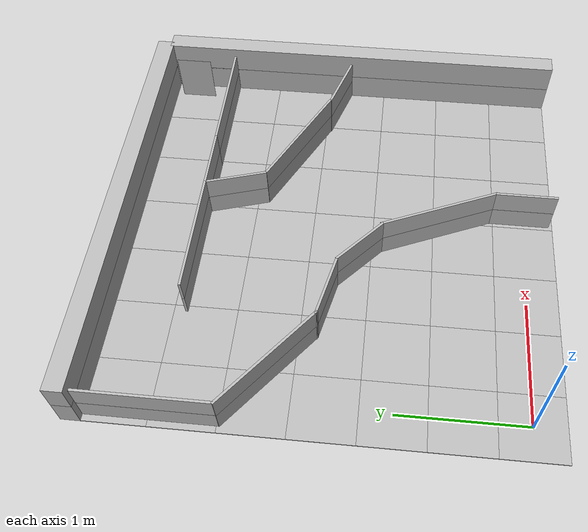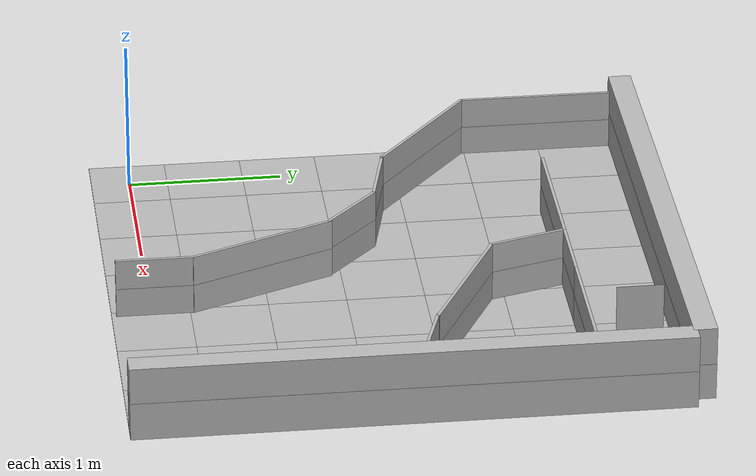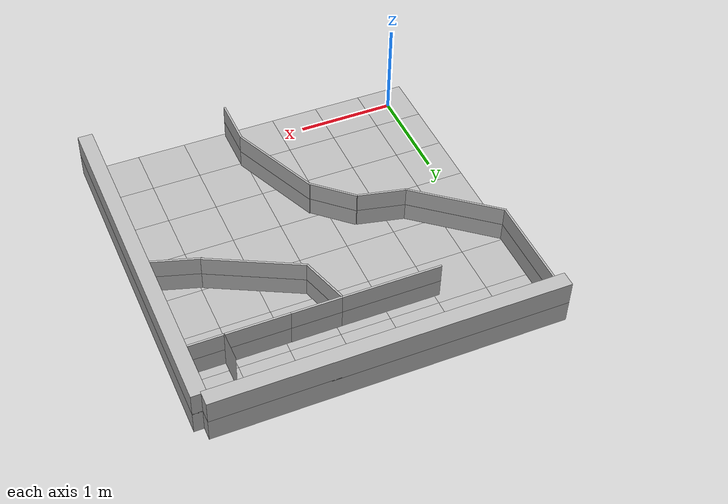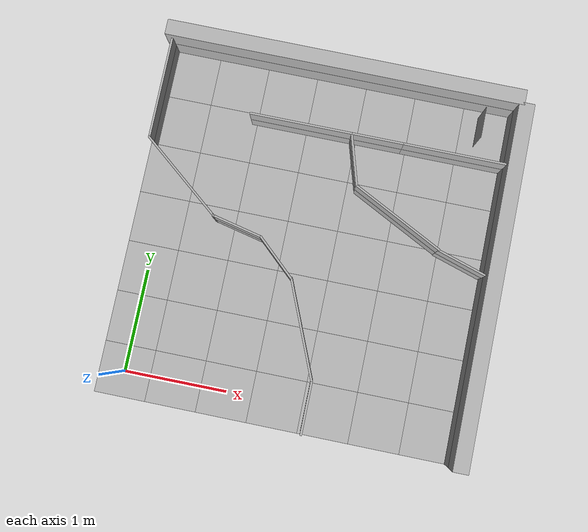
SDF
<sdf version="1.5">
 <world name="default">
  <physics name="default_physics" default="0" type="ode">
   <max_step_size>0.001</max_step_size>
   <real_time_factor>1</real_time_factor>
   <real_time_update_rate>1000</real_time_update_rate>
  </physics>
  <scene>
   <ambient>0.4 0.4 0.4 1</ambient>
   <background>0.7 0.7 0.7 1</background>
   <shadows>0</shadows>
   <grid>0</grid>
  </scene>
  <light name="sun" type="directional">
   <cast_shadows>0</cast_shadows>
   <pose>0 -100 10 0 -0 0</pose>
   <diffuse>0.8 0.8 0.8 1</diffuse>
   <specular>0.1 0.1 0.1 1</specular>
   <attenuation>
    <range>1000</range>
    <constant>0.9</constant>
    <linear>0.01</linear>
    <quadratic>0.001</quadratic>
   </attenuation>
   <direction>-0.5 0.5 -1</direction>
  </light>
  <include><name>arena</name><uri>model://dia_cr3_arena</uri></include>
  <include><name>rail-N1</name><uri>model://dia_rail</uri><pose>1.5 3.3 0.12 0 0 0</pose></include>
  <include><name>rail-N2</name><uri>model://dia_rail</uri><pose>1.5 3.3 0.36 0 0 0</pose></include>
  <include><name>rail-E1</name><uri>model://dia_rail</uri><pose>3.27 1.5 0.12 0 0 1.57</pose></include>
  <include><name>rail-E2</name><uri>model://dia_rail</uri><pose>3.27 1.5 0.36 0 0 1.57</pose></include>
  <include><name>panel-1a</name><uri>model://dia_panel</uri><pose>2.7 2.65 0.1 1.57 0 0</pose></include>
  <include><name>panel-1b</name><uri>model://dia_panel</uri><pose>2.7 2.65 0.3 1.57 0 0</pose></include>
  <include><name>panel-2a</name><uri>model://dia_panel_short</uri><pose>1.95 2.65 0.1 1.57 0 0</pose></include>
  <include><name>panel-2b</name><uri>model://dia_panel_short</uri><pose>1.95 2.65 0.3 1.57 0 0</pose></include>
  <include><name>panel-3a</name><uri>model://dia_panel</uri><pose>1.20 2.65 0.1 1.57 0 0</pose></include>
  <include><name>panel-3b</name><uri>model://dia_panel</uri><pose>1.20 2.65 0.3 1.57 0 0</pose></include>
  <include>
   <name>panel-4a</name>
   <uri>model://dia_panel_short</uri>
   <pose>1.77 2.4 0.1 1.57 0 -1.28</pose>
  </include>
  <include>
   <name>panel-4b</name>
   <uri>model://dia_panel_short</uri>
   <pose>1.77 2.4 0.3 1.57 0 -1.28</pose>
  </include>
  <include><name>panel-5a</name><uri>model://dia_panel</uri><pose>2.28 1.94 0.1 1.57 0 -0.47</pose></include>
  <include><name>panel-5b</name><uri>model://dia_panel</uri><pose>2.28 1.94 0.3 1.57 0 -0.47</pose></include>
  <include>
   <name>panel-6a</name>
   <uri>model://dia_panel_short</uri>
   <pose>2.95 1.64 0.1 1.57 0 -0.3</pose>
  </include>
  <include>
   <name>panel-6b</name>
   <uri>model://dia_panel_short</uri>
   <pose>2.95 1.64 0.3 1.57 0 -0.3</pose>
  </include>
  <include><name>panel-7a</name><uri>model://dia_panel</uri><pose>-0.19 2.73 0.1 1.57 0 1.57</pose></include>
  <include><name>panel-7b</name><uri>model://dia_panel</uri><pose>-0.19 2.73 0.3 1.57 0 1.57</pose></include>
  <include><name>panel-8a</name><uri>model://dia_panel</uri><pose>0.19 1.92 0.1 1.57 0 2.46</pose></include>
  <include><name>panel-8b</name><uri>model://dia_panel</uri><pose>0.19 1.92 0.3 1.57 0 2.46</pose></include>
  <include>
   <name>panel-9a</name>
   <uri>model://dia_panel_short</uri>
   <pose>0.8 1.56 0.1 1.57 0 2.92</pose>
  </include>
  <include>
   <name>panel-9b</name>
   <uri>model://dia_panel_short</uri>
   <pose>0.8 1.56 0.3 1.57 0 2.92</pose>
  </include>
  <include>
   <name>panel-10a</name>
   <uri>model://dia_panel_short</uri>
   <pose>1.23 1.34 0.1 1.57 0 2.4</pose>
  </include>
  <include>
   <name>panel-10b</name>
   <uri>model://dia_panel_short</uri>
   <pose>1.23 1.34 0.3 1.57 0 2.4</pose>
  </include>
  <include><name>panel-11a</name><uri>model://dia_panel</uri><pose>1.6 0.73 0.1 1.57 0 1.97</pose></include>
  <include><name>panel-11b</name><uri>model://dia_panel</uri><pose>1.6 0.73 0.3 1.57 0 1.97</pose></include>
  <include>
   <name>panel-12a</name>
   <uri>model://dia_panel_short</uri>
   <pose>1.79 0.03 0.1 1.57 0 1.57</pose>
  </include>
  <include>
   <name>panel-12b</name>
   <uri>model://dia_panel_short</uri>
   <pose>1.79 0.03 0.3 1.57 0 1.57</pose>
  </include>
  <include>
   <name>AprilTag</name>
   <uri>model://april_tag16_05_5</uri>
   <pose>2.88 2.95 0.4 -1.57 0 -1.57</pose>
  </include>
  <gravity>0 0 -9.8</gravity>
  <magnetic_field>6e-06 2.3e-05 -4.2e-05</magnetic_field>
  <atmosphere type="adiabatic"/>
  <spherical_coordinates>
   <surface_model>EARTH_WGS84</surface_model>
   <latitude_deg>0</latitude_deg>
   <longitude_deg>0</longitude_deg>
   <elevation>0</elevation>
   <heading_deg>0</heading_deg>
  </spherical_coordinates>
 </world>
</sdf>

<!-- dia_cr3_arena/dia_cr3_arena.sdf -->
<sdf version="1.5">
  <model name="dia_cr3_arena">
    <static>true</static>
    <link name="link">
      <collision name="surface_collision">
        <pose>1.525 1.525 0 0 0 0 0</pose>
        <geometry>
          <box>
            <size>3.55 3.55 0.01</size>
          </box>
        </geometry>
        <surface>
          <friction>
            <ode>
              <mu>0.3</mu>
              <mu2>0.3</mu2>
            </ode>
          </friction>
        </surface>
      </collision>

      <visual name="tile-1">
        <pose>0 0 0 0 0 0 0</pose>
        <geometry>
          <box>
            <size>0.5 0.5 0.01</size>
          </box>
        </geometry>
        <material>
          <script>
            <uri>model://dia_cr3_arena/materials/scripts</uri>
            <uri>model://dia_cr3_arena/materials/textures</uri>
            <name>arena_tile/Diffuse</name>
          </script>
        </material>
      </visual>

      <visual name="tile-2">
        <pose>0.5 0 0 0 0 0 0</pose>
        <geometry>
          <box>
            <size>0.5 0.5 0.01</size>
          </box>
        </geometry>
        <material>
          <script>
            <uri>model://dia_cr3_arena/materials/scripts</uri>
            <uri>model://dia_cr3_arena/materials/textures</uri>
            <name>arena_tile/Diffuse</name>
          </script>
        </material>
      </visual>

      <visual name="tile-3">
        <pose>1 0 0 0 0 0 0</pose>
        <geometry>
          <box>
            <size>0.5 0.5 0.01</size>
          </box>
        </geometry>
        <material>
          <script>
            <uri>model://dia_cr3_arena/materials/scripts</uri>
            <uri>model://dia_cr3_arena/materials/textures</uri>
            <name>arena_tile/Diffuse</name>
          </script>
        </material>
      </visual>

      <visual name="tile-4">
        <pose>1.5 0 0 0 0 0 0</pose>
        <geometry>
          <box>
            <size>0.5 0.5 0.01</size>
          </box>
        </geometry>
        <material>
          <script>
            <uri>model://dia_cr3_arena/materials/scripts</uri>
            <uri>model://dia_cr3_arena/materials/textures</uri>
            <name>arena_tile/Diffuse</name>
          </script>
        </material>
      </visual>

      <visual name="tile-5">
        <pose>2 0 0 0 0 0 0</pose>
        <geometry>
          <box>
            <size>0.5 0.5 0.01</size>
          </box>
        </geometry>
        <material>
          <script>
            <uri>model://dia_cr3_arena/materials/scripts</uri>
            <uri>model://dia_cr3_arena/materials/textures</uri>
            <name>arena_tile/Diffuse</name>
          </script>
        </material>
      </visual>

      <visual name="tile-6">
        <pose>2.5 0 0 0 0 0 0</pose>
        <geometry>
          <box>
            <size>0.5 0.5 0.01</size>
          </box>
        </geometry>
        <material>
          <script>
            <uri>model://dia_cr3_arena/materials/scripts</uri>
            <uri>model://dia_cr3_arena/materials/textures</uri>
            <name>arena_tile/Diffuse</name>
          </script>
        </material>
      </visual>

      <visual name="tile-7">
        <pose>3 0 0 0 0 0 0</pose>
        <geometry>
          <box>
            <size>0.5 0.5 0.01</size>
          </box>
        </geometry>
        <material>
          <script>
            <uri>model://dia_cr3_arena/materials/scripts</uri>
            <uri>model://dia_cr3_arena/materials/textures</uri>
            <name>arena_tile/Diffuse</name>
          </script>
        </material>
      </visual>

      <visual name="tile-8">
        <pose>0 0.5 0 0 0 0 0</pose>
        <geometry>
          <box>
            <size>0.5 0.5 0.01</size>
          </box>
        </geometry>
        <material>
          <script>
            <uri>model://dia_cr3_arena/materials/scripts</uri>
            <uri>model://dia_cr3_arena/materials/textures</uri>
            <name>arena_tile/Diffuse</name>
          </script>
        </material>
      </visual>

      <visual name="tile-9">
        <pose>0.5 0.5 0 0 0 0 0</pose>
        <geometry>
          <box>
            <size>0.5 0.5 0.01</size>
          </box>
        </geometry>
        <material>
          <script>
            <uri>model://dia_cr3_arena/materials/scripts</uri>
            <uri>model://dia_cr3_arena/materials/textures</uri>
            <name>arena_tile/Diffuse</name>
          </script>
        </material>
      </visual>

      <visual name="tile-10">
        <pose>1 0.5 0 0 0 0 0</pose>
        <geometry>
          <box>
            <size>0.5 0.5 0.01</size>
          </box>
        </geometry>
        <material>
          <script>
            <uri>model://dia_cr3_arena/materials/scripts</uri>
            <uri>model://dia_cr3_arena/materials/textures</uri>
            <name>arena_tile/Diffuse</name>
          </script>
        </material>
      </visual>

      <visual name="tile-11">
        <pose>1.5 0.5 0 0 0 0 0</pose>
        <geometry>
          <box>
            <size>0.5 0.5 0.01</size>
          </box>
        </geometry>
        <material>
          <script>
            <uri>model://dia_cr3_arena/materials/scripts</uri>
            <uri>model://dia_cr3_arena/materials/textures</uri>
            <name>arena_tile/Diffuse</name>
          </script>
        </material>
      </visual>

      <visual name="tile-12">
        <pose>2 0.5 0 0 0 0 0</pose>
        <geometry>
          <box>
            <size>0.5 0.5 0.01</size>
          </box>
        </geometry>
        <material>
          <script>
            <uri>model://dia_cr3_arena/materials/scripts</uri>
            <uri>model://dia_cr3_arena/materials/textures</uri>
            <name>arena_tile/Diffuse</name>
          </script>
        </material>
      </visual>

      <visual name="tile-13">
        <pose>2.5 0.5 0 0 0 0 0</pose>
        <geometry>
          <box>
            <size>0.5 0.5 0.01</size>
          </box>
        </geometry>
        <material>
          <script>
            <uri>model://dia_cr3_arena/materials/scripts</uri>
            <uri>model://dia_cr3_arena/materials/textures</uri>
            <name>arena_tile/Diffuse</name>
          </script>
        </material>
      </visual>

      <visual name="tile-14">
        <pose>3 0.5 0 0 0 0 0</pose>
        <geometry>
          <box>
            <size>0.5 0.5 0.01</size>
          </box>
        </geometry>
        <material>
          <script>
            <uri>model://dia_cr3_arena/materials/scripts</uri>
            <uri>model://dia_cr3_arena/materials/textures</uri>
            <name>arena_tile/Diffuse</name>
          </script>
        </material>
      </visual>

      <visual name="tile-15">
        <pose>0 1 0 0 0 0 0</pose>
        <geometry>
          <box>
            <size>0.5 0.5 0.01</size>
          </box>
        </geometry>
        <material>
          <script>
            <uri>model://dia_cr3_arena/materials/scripts</uri>
            <uri>model://dia_cr3_arena/materials/textures</uri>
            <name>arena_tile/Diffuse</name>
          </script>
        </material>
      </visual>

      <visual name="tile-16">
        <pose>0.5 1 0 0 0 0 0</pose>
        <geometry>
          <box>
            <size>0.5 0.5 0.01</size>
          </box>
        </geometry>
        <material>
          <script>
            <uri>model://dia_cr3_arena/materials/scripts</uri>
            <uri>model://dia_cr3_arena/materials/textures</uri>
            <name>arena_tile/Diffuse</name>
          </script>
        </material>
      </visual>

      <visual name="tile-17">
        <pose>1 1 0 0 0 0 0</pose>
        <geometry>
          <box>
            <size>0.5 0.5 0.01</size>
          </box>
        </geometry>
        <material>
          <script>
            <uri>model://dia_cr3_arena/materials/scripts</uri>
            <uri>model://dia_cr3_arena/materials/textures</uri>
            <name>arena_tile/Diffuse</name>
          </script>
        </material>
      </visual>

      <visual name="tile-18">
        <pose>1.5 1 0 0 0 0 0</pose>
        <geometry>
          <box>
            <size>0.5 0.5 0.01</size>
          </box>
        </geometry>
        <material>
          <script>
            <uri>model://dia_cr3_arena/materials/scripts</uri>
            <uri>model://dia_cr3_arena/materials/textures</uri>
            <name>arena_tile/Diffuse</name>
          </script>
        </material>
      </visual>

      <visual name="tile-19">
        <pose>2 1 0 0 0 0 0</pose>
        <geometry>
          <box>
            <size>0.5 0.5 0.01</size>
          </box>
        </geometry>
        <material>
          <script>
            <uri>model://dia_cr3_arena/materials/scripts</uri>
            <uri>model://dia_cr3_arena/materials/textures</uri>
            <name>arena_tile/Diffuse</name>
          </script>
        </material>
      </visual>

      <visual name="tile-20">
        <pose>2.5 1 0 0 0 0 0</pose>
        <geometry>
          <box>
            <size>0.5 0.5 0.01</size>
          </box>
        </geometry>
        <material>
          <script>
            <uri>model://dia_cr3_arena/materials/scripts</uri>
            <uri>model://dia_cr3_arena/materials/textures</uri>
            <name>arena_tile/Diffuse</name>
          </script>
        </material>
      </visual>

      <visual name="tile-21">
        <pose>3 1 0 0 0 0 0</pose>
        <geometry>
          <box>
            <size>0.5 0.5 0.01</size>
          </box>
        </geometry>
        <material>
          <script>
            <uri>model://dia_cr3_arena/materials/scripts</uri>
            <uri>model://dia_cr3_arena/materials/textures</uri>
            <name>arena_tile/Diffuse</name>
          </script>
        </material>
      </visual>

      <visual name="tile-22">
        <pose>0 1.5 0 0 0 0 0</pose>
        <geometry>
          <box>
            <size>0.5 0.5 0.01</size>
          </box>
        </geometry>
        <material>
          <script>
            <uri>model://dia_cr3_arena/materials/scripts</uri>
            <uri>model://dia_cr3_arena/materials/textures</uri>
            <name>arena_tile/Diffuse</name>
          </script>
        </material>
      </visual>

      <visual name="tile-23">
        <pose>0.5 1.5 0 0 0 0 0</pose>
        <geometry>
          <box>
            <size>0.5 0.5 0.01</size>
          </box>
        </geometry>
        <material>
          <script>
            <uri>model://dia_cr3_arena/materials/scripts</uri>
            <uri>model://dia_cr3_arena/materials/textures</uri>
            <name>arena_tile/Diffuse</name>
          </script>
        </material>
      </visual>

      <visual name="tile-24">
        <pose>1 1.5 0 0 0 0 0</pose>
        <geometry>
          <box>
            <size>0.5 0.5 0.01</size>
          </box>
        </geometry>
        <material>
          <script>
            <uri>model://dia_cr3_arena/materials/scripts</uri>
            <uri>model://dia_cr3_arena/materials/textures</uri>
            <name>arena_tile/Diffuse</name>
          </script>
        </material>
      </visual>

      <visual name="tile-25">
        <pose>1.5 1.5 0 0 0 0 0</pose>
        <geometry>
          <box>
            <size>0.5 0.5 0.01</size>
          </box>
        </geometry>
        <material>
          <script>
            <uri>model://dia_cr3_arena/materials/scripts</uri>
            <uri>model://dia_cr3_arena/materials/textures</uri>
            <name>arena_tile/Diffuse</name>
          </script>
        </material>
      </visual>

      <visual name="tile-26">
        <pose>2 1.5 0 0 0 0 0</pose>
        <geometry>
          <box>
            <size>0.5 0.5 0.01</size>
          </box>
        </geometry>
        <material>
          <script>
            <uri>model://dia_cr3_arena/materials/scripts</uri>
            <uri>model://dia_cr3_arena/materials/textures</uri>
            <name>arena_tile/Diffuse</name>
          </script>
        </material>
      </visual>

      <visual name="tile-27">
        <pose>2.5 1.5 0 0 0 0 0</pose>
        <geometry>
          <box>
            <size>0.5 0.5 0.01</size>
          </box>
        </geometry>
        <material>
          <script>
            <uri>model://dia_cr3_arena/materials/scripts</uri>
            <uri>model://dia_cr3_arena/materials/textures</uri>
            <name>arena_tile/Diffuse</name>
          </script>
        </material>
      </visual>

      <visual name="tile-28">
        <pose>3 1.5 0 0 0 0 0</pose>
        <geometry>
          <box>
            <size>0.5 0.5 0.01</size>
          </box>
        </geometry>
        <material>
          <script>
            <uri>model://dia_cr3_arena/materials/scripts</uri>
            <uri>model://dia_cr3_arena/materials/textures</uri>
            <name>arena_tile/Diffuse</name>
          </script>
        </material>
      </visual>

      <visual name="tile-29">
        <pose>0 2 0 0 0 0 0</pose>
        <geometry>
          <box>
            <size>0.5 0.5 0.01</size>
          </box>
        </geometry>
        <material>
          <script>
            <uri>model://dia_cr3_arena/materials/scripts</uri>
            <uri>model://dia_cr3_arena/materials/textures</uri>
            <name>arena_tile/Diffuse</name>
          </script>
        </material>
      </visual>

      <visual name="tile-30">
        <pose>0.5 2 0 0 0 0 0</pose>
        <geometry>
          <box>
            <size>0.5 0.5 0.01</size>
          </box>
        </geometry>
        <material>
          <script>
            <uri>model://dia_cr3_arena/materials/scripts</uri>
            <uri>model://dia_cr3_arena/materials/textures</uri>
            <name>arena_tile/Diffuse</name>
          </script>
        </material>
      </visual>

      <visual name="tile-31">
        <pose>1 2 0 0 0 0 0</pose>
        <geometry>
          <box>
            <size>0.5 0.5 0.01</size>
          </box>
        </geometry>
        <material>
          <script>
            <uri>model://dia_cr3_arena/materials/scripts</uri>
            <uri>model://dia_cr3_arena/materials/textures</uri>
            <name>arena_tile/Diffuse</name>
          </script>
        </material>
      </visual>

      <visual name="tile-32">
        <pose>1.5 2 0 0 0 0 0</pose>
        <geometry>
          <box>
            <size>0.5 0.5 0.01</size>
          </box>
        </geometry>
        <material>
          <script>
            <uri>model://dia_cr3_arena/materials/scripts</uri>
            <uri>model://dia_cr3_arena/materials/textures</uri>
            <name>arena_tile/Diffuse</name>
          </script>
        </material>
      </visual>

      <visual name="tile-33">
        <pose>2 2 0 0 0 0 0</pose>
        <geometry>
          <box>
            <size>0.5 0.5 0.01</size>
          </box>
        </geometry>
        <material>
          <script>
            <uri>model://dia_cr3_arena/materials/scripts</uri>
            <uri>model://dia_cr3_arena/materials/textures</uri>
            <name>arena_tile/Diffuse</name>
          </script>
        </material>
      </visual>

      <visual name="tile-34">
        <pose>2.5 2 0 0 0 0 0</pose>
        <geometry>
          <box>
            <size>0.5 0.5 0.01</size>
          </box>
        </geometry>
        <material>
          <script>
            <uri>model://dia_cr3_arena/materials/scripts</uri>
            <uri>model://dia_cr3_arena/materials/textures</uri>
            <name>arena_tile/Diffuse</name>
          </script>
        </material>
      </visual>

      <visual name="tile-35">
        <pose>3 2 0 0 0 0 0</pose>
        <geometry>
          <box>
            <size>0.5 0.5 0.01</size>
          </box>
        </geometry>
        <material>
          <script>
            <uri>model://dia_cr3_arena/materials/scripts</uri>
            <uri>model://dia_cr3_arena/materials/textures</uri>
            <name>arena_tile/Diffuse</name>
          </script>
        </material>
      </visual>

      <visual name="tile-36">
        <pose>0 2.5 0 0 0 0 0</pose>
        <geometry>
          <box>
            <size>0.5 0.5 0.01</size>
          </box>
        </geometry>
        <material>
          <script>
            <uri>model://dia_cr3_arena/materials/scripts</uri>
            <uri>model://dia_cr3_arena/materials/textures</uri>
            <name>arena_tile/Diffuse</name>
          </script>
        </material>
      </visual>

      <visual name="tile-37">
        <pose>0.5 2.5 0 0 0 0 0</pose>
        <geometry>
          <box>
            <size>0.5 0.5 0.01</size>
          </box>
        </geometry>
        <material>
          <script>
            <uri>model://dia_cr3_arena/materials/scripts</uri>
            <uri>model://dia_cr3_arena/materials/textures</uri>
            <name>arena_tile/Diffuse</name>
          </script>
        </material>
      </visual>

      <visual name="tile-38">
        <pose>1 2.5 0 0 0 0 0</pose>
        <geometry>
          <box>
            <size>0.5 0.5 0.01</size>
          </box>
        </geometry>
        <material>
          <script>
            <uri>model://dia_cr3_arena/materials/scripts</uri>
            <uri>model://dia_cr3_arena/materials/textures</uri>
            <name>arena_tile/Diffuse</name>
          </script>
        </material>
      </visual>

      <visual name="tile-39">
        <pose>1.5 2.5 0 0 0 0 0</pose>
        <geometry>
          <box>
            <size>0.5 0.5 0.01</size>
          </box>
        </geometry>
        <material>
          <script>
            <uri>model://dia_cr3_arena/materials/scripts</uri>
            <uri>model://dia_cr3_arena/materials/textures</uri>
            <name>arena_tile/Diffuse</name>
          </script>
        </material>
      </visual>

      <visual name="tile-40">
        <pose>2 2.5 0 0 0 0 0</pose>
        <geometry>
          <box>
            <size>0.5 0.5 0.01</size>
          </box>
        </geometry>
        <material>
          <script>
            <uri>model://dia_cr3_arena/materials/scripts</uri>
            <uri>model://dia_cr3_arena/materials/textures</uri>
            <name>arena_tile/Diffuse</name>
          </script>
        </material>
      </visual>

      <visual name="tile-41">
        <pose>2.5 2.5 0 0 0 0 0</pose>
        <geometry>
          <box>
            <size>0.5 0.5 0.01</size>
          </box>
        </geometry>
        <material>
          <script>
            <uri>model://dia_cr3_arena/materials/scripts</uri>
            <uri>model://dia_cr3_arena/materials/textures</uri>
            <name>arena_tile/Diffuse</name>
          </script>
        </material>
      </visual>

      <visual name="tile-42">
        <pose>3 2.5 0 0 0 0 0</pose>
        <geometry>
          <box>
            <size>0.5 0.5 0.01</size>
          </box>
        </geometry>
        <material>
          <script>
            <uri>model://dia_cr3_arena/materials/scripts</uri>
            <uri>model://dia_cr3_arena/materials/textures</uri>
            <name>arena_tile/Diffuse</name>
          </script>
        </material>
      </visual>

      <visual name="tile-43">
        <pose>0 3 0 0 0 0 0</pose>
        <geometry>
          <box>
            <size>0.5 0.5 0.01</size>
          </box>
        </geometry>
        <material>
          <script>
            <uri>model://dia_cr3_arena/materials/scripts</uri>
            <uri>model://dia_cr3_arena/materials/textures</uri>
            <name>arena_tile/Diffuse</name>
          </script>
        </material>
      </visual>

      <visual name="tile-44">
        <pose>0.5 3 0 0 0 0 0</pose>
        <geometry>
          <box>
            <size>0.5 0.5 0.01</size>
          </box>
        </geometry>
        <material>
          <script>
            <uri>model://dia_cr3_arena/materials/scripts</uri>
            <uri>model://dia_cr3_arena/materials/textures</uri>
            <name>arena_tile/Diffuse</name>
          </script>
        </material>
      </visual>

      <visual name="tile-45">
        <pose>1 3 0 0 0 0 0</pose>
        <geometry>
          <box>
            <size>0.5 0.5 0.01</size>
          </box>
        </geometry>
        <material>
          <script>
            <uri>model://dia_cr3_arena/materials/scripts</uri>
            <uri>model://dia_cr3_arena/materials/textures</uri>
            <name>arena_tile/Diffuse</name>
          </script>
        </material>
      </visual>

      <visual name="tile-46">
        <pose>1.5 3 0 0 0 0 0</pose>
        <geometry>
          <box>
            <size>0.5 0.5 0.01</size>
          </box>
        </geometry>
        <material>
          <script>
            <uri>model://dia_cr3_arena/materials/scripts</uri>
            <uri>model://dia_cr3_arena/materials/textures</uri>
            <name>arena_tile/Diffuse</name>
          </script>
        </material>
      </visual>

      <visual name="tile-47">
        <pose>2 3 0 0 0 0 0</pose>
        <geometry>
          <box>
            <size>0.5 0.5 0.01</size>
          </box>
        </geometry>
        <material>
          <script>
            <uri>model://dia_cr3_arena/materials/scripts</uri>
            <uri>model://dia_cr3_arena/materials/textures</uri>
            <name>arena_tile/Diffuse</name>
          </script>
        </material>
      </visual>

      <visual name="tile-48">
        <pose>2.5 3 0 0 0 0 0</pose>
        <geometry>
          <box>
            <size>0.5 0.5 0.01</size>
          </box>
        </geometry>
        <material>
          <script>
            <uri>model://dia_cr3_arena/materials/scripts</uri>
            <uri>model://dia_cr3_arena/materials/textures</uri>
            <name>arena_tile/Diffuse</name>
          </script>
        </material>
      </visual>

      <visual name="tile-49">
        <pose>3 3 0 0 0 0 0</pose>
        <geometry>
          <box>
            <size>0.5 0.5 0.01</size>
          </box>
        </geometry>
        <material>
          <script>
            <uri>model://dia_cr3_arena/materials/scripts</uri>
            <uri>model://dia_cr3_arena/materials/textures</uri>
            <name>arena_tile/Diffuse</name>
          </script>
        </material>
      </visual>
    </link>
  </model>
</sdf>

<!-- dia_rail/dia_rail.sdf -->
<sdf version="1.5">
  <model name="dia_rail">
    <static>true</static>
    <link name="link">
      <collision name="rail-1">
        <pose>0 0 0 0 0 0</pose>
        <geometry>
          <box>
            <size>3.5 0.15 0.25</size>
          </box>
        </geometry>
      </collision>
      <visual name="rail-visual-1">
        <pose>0 0 0 0 0 0</pose>
        <geometry>
          <box>
            <size>3.5 0.15 0.25</size>
          </box>
        </geometry>
        <material>
          <script>
            <uri>model://dia_rail/materials/scripts</uri>
            <uri>model://dia_rail/materials/textures</uri>
            <name>dia_rail/Diffuse</name>
          </script>
        </material>
      </visual>
    </link>
  </model>
</sdf>

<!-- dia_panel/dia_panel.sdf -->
<sdf version="1.5">
  <model name="dia_panel">
    <static>true</static>
    <link name="link">
      <collision name="surface">
        <pose>0 0 0 0 0 0</pose>
        <geometry>
          <box>
            <size>1.0 0.2 0.02</size>
          </box>
        </geometry>
      </collision>
      <visual name="surface">
        <pose>0 0 0 0 0 0</pose>
        <geometry>
          <box>
            <size>1.0 0.2 0.02</size>
          </box>
        </geometry>
        <material>
          <script>
            <uri>model://dia_panel/materials/scripts</uri>
            <uri>model://dia_panel/materials/textures</uri>
            <name>dia_panel/Diffuse</name>
          </script>
        </material>
      </visual>
    </link>
  </model>
</sdf>

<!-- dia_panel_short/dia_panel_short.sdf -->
<sdf version="1.5">
  <model name="dia_panel_short">
    <static>true</static>
    <link name="link">
      <collision name="surface">
        <pose>0 0 0 0 0 0</pose>
        <geometry>
          <box>
            <size>0.5 0.2 0.02</size>
          </box>
        </geometry>
      </collision>
      <visual name="surface">
        <pose>0 0 0 0 0 0</pose>
        <geometry>
          <box>
            <size>0.5 0.2 0.02</size>
          </box>
        </geometry>
        <material>
          <script>
            <uri>model://dia_panel_short/materials/scripts</uri>
            <uri>model://dia_panel_short/materials/textures</uri>
            <name>dia_panel_short/Diffuse</name>
          </script>
        </material>
      </visual>
    </link>
  </model>
</sdf>

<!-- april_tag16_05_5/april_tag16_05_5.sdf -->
<sdf version="1.5">
  <model name="april_tag16_05_5">
    <static>true</static>
      <link name="april_tag16_05_5">
        <collision name="tag-collision">
          <pose>0 0 0 0 0 0</pose>
          <geometry>
            <box>
              <size>0.297 0.42 0.00</size>
            </box>
          </geometry>
        </collision>
        <visual name="tag-visual">
          <pose>0 0 0 0 0 0</pose>
          <geometry>
            <box>
              <size>0.297 0.42 0.00</size>
            </box>
          </geometry>
          <material>
            <script>
              <uri>model://april_tag16_05_5/materials/scripts</uri>
              <uri>model://april_tag16_05_5/materials/textures</uri>
              <name>april_tag16_05_5/Diffuse</name>
            </script>
          </material>
        </visual>
      </link>
  </model>
</sdf>
